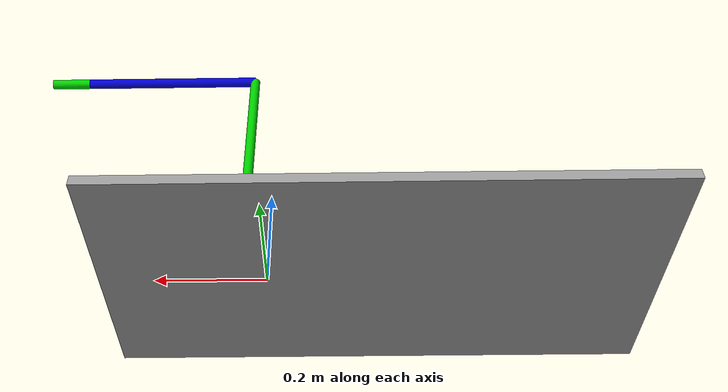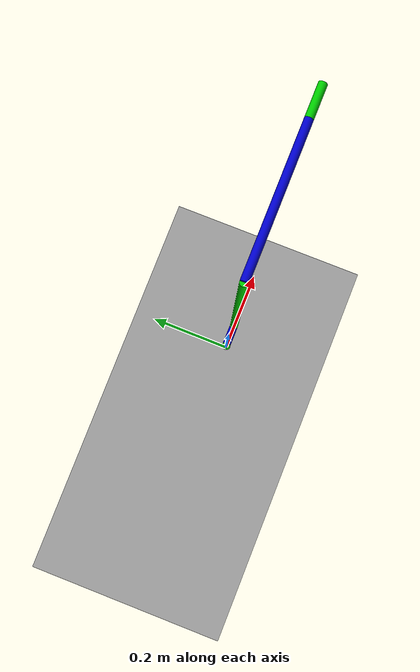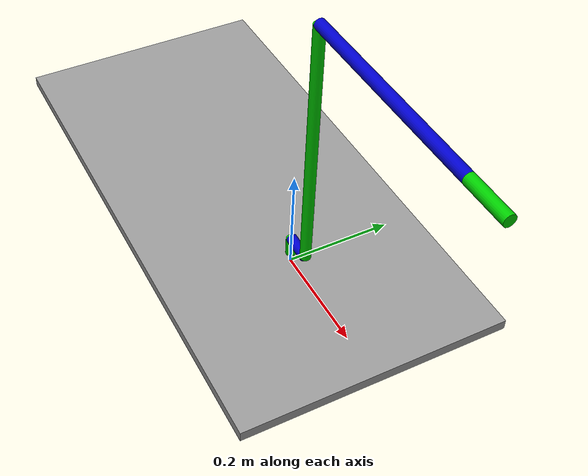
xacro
<?xml version="1.0"?>
<robot xmlns:xacro="http://www.ros.org/wiki/xacro" name="simon">

    <!-- This is an URDF representation of Simon's robotic arm -->

    <xacro:include filename="inertial_macros.xacro"/>
    <xacro:property name="pi" value="3.1415926535897931" />

    <material name="blue">
        <color rgba="0 0 0.8 1"/>
    </material>

    <material name="green">
        <color rgba="0 0.8 0 1"/>
    </material>

    <material name="grey">
        <color rgba="0.6 0.6 0.6 1"/>
    </material>

    <!-- World link -->
    <link name="world">
    </link>

    <!-- base_joint -->
    <joint name="base_joint" type="fixed">
        <origin xyz="0 0 0" rpy="0 0 0" />
        <parent link="world" />
        <child link="base_link" />
    </joint>

    <!-- base_link is a large rectangular plate -->
    <link name="base_link">
        <visual>
            <origin xyz="-0.2 0 0.01" rpy="0 0 0"/>
            <geometry>
                <box size="1 0.5 0.02"/>
            </geometry>
            <material name="grey" />
        </visual>
        <collision>
            <origin xyz="-0.2 0 0.01" rpy="0 0 0"/>
            <geometry>
                <box size="1 0.5 0.02"/>
            </geometry>
        </collision>
    </link>

    <!-- Fixed joint between base and link_1 -->
    <joint name="base_link_1" type="fixed">
        <origin xyz="0 0 0.02" rpy="0 0 0" />
        <parent link="base_link" />
        <child link="link_1" />
    </joint>

    <!-- link_1 -->
    <xacro:property name="link_length" value="0.036" />
    <xacro:property name="link_radius" value="0.01" />

    <link name="link_1">
        <visual>
            <origin xyz="0 0 ${link_length/2}" rpy="0 0 0" />
            <geometry>
                <cylinder length="${link_length}" radius="${link_radius}"/>
            </geometry>
            <material name="green" />
        </visual>
        <collision>
            <origin xyz="0 0 ${link_length/2}" rpy="0 0 0" />
            <geometry>
                <cylinder length="${link_length}" radius="${link_radius}"/>
            </geometry>
        </collision>
        <xacro:inertial_cylinder mass="0.3" length="${link_length}" radius="${link_radius}">
            <!-- Specifies the center of gravity and the inertial reference frame
            (relative to the link's reference frame) -->
            <origin xyz="0 0 ${link_length/2}" rpy="0 0 0" />
        </xacro:inertial_cylinder>
    </link>

    <!-- theta_1 allows link_1 to rotate with respect to base_link -->
    <joint name="theta_1" type="revolute">
        <origin xyz="0 0 ${link_length}" rpy="0 0 0" />
        <parent link="link_1" />
        <child link="link_2" />
        <axis xyz="0 0 1" />
        <limit lower="-${pi/2}" upper="${pi/2}" velocity="100" effort="1000.0" />
    </joint>

    <!-- link_2 -->
    <xacro:property name="link_length" value="0.05" />

    <link name="link_2">
        <visual>
            <origin xyz="${link_length/2} 0 0" rpy="0 ${pi/2} 0" />
            <geometry>
                <cylinder length="${link_length}" radius="${link_radius}"/>
            </geometry>
            <material name="blue" />
        </visual>
        <collision>
            <origin xyz="${link_length/2} 0 0" rpy="0 ${pi/2} 0" />
            <geometry>
                <cylinder length="${link_length}" radius="${link_radius}"/>
            </geometry>
        </collision>
        <xacro:inertial_cylinder mass="0.4" length="${link_length}" radius="${link_radius}">
            <origin xyz="${link_length/2} 0 0" rpy="0 ${pi/2} 0" />
        </xacro:inertial_cylinder>
    </link>

    <!-- theta_2 allows link_3 to rotate with respect to link_2 -->
    <joint name="theta_2" type="revolute">
        <origin xyz="${link_length} 0 0" rpy="0 0 0" />
        <parent link="link_2" />
        <child link="link_3" />
        <axis xyz="0 1 0" />
        <limit lower="-1" upper="${pi/2}" velocity="100" effort="100" />
    </joint>

    <!-- link_3 -->
    <xacro:property name="link_length" value="0.485" />

    <link name="link_3">
        <visual>
            <origin xyz="0 0 ${link_length/2}" rpy="0 0 0" />
            <geometry>
                <cylinder length="${link_length}" radius="${link_radius}"/>
            </geometry>
            <material name="green" />
        </visual>
        <collision>
            <origin xyz="0 0 ${link_length/2}" rpy="0 0 0" />
            <geometry>
                <cylinder length="${link_length}" radius="${link_radius}"/>
            </geometry>
        </collision>
        <xacro:inertial_cylinder mass="1" length="${link_length}" radius="${link_radius}">
            <origin xyz="0 0 ${link_length/2}" rpy="0 0 0" />
        </xacro:inertial_cylinder>
    </link>

    <!-- theta_3 allows link_4 to rotate with respect to link_3 -->
    <joint name="theta_3" type="revolute">
        <origin xyz="0 0 ${link_length}" rpy="0 0 0" />
        <parent link="link_3" />
        <child link="link_4" />
        <axis xyz="0 1 0" />
        <limit lower="-${pi/2}" upper="1" velocity="100" effort="1000.0" />
    </joint>

    <!-- link_4 -->
    <xacro:property name="link_length" value="0.36" />

    <link name="link_4">
        <visual>
            <origin xyz="${link_length/2} 0 0" rpy="0 ${pi/2} 0" />
            <geometry>
                <cylinder length="${link_length}" radius="${link_radius}"/>
            </geometry>
            <material name="blue" />
        </visual>
        <collision>
            <origin xyz="${link_length/2} 0 0" rpy="0 ${pi/2} 0" />
            <geometry>
                <cylinder length="${link_length}" radius="${link_radius}"/>
            </geometry>
        </collision>
        <xacro:inertial_cylinder mass="0.75" length="${link_length}" radius="${link_radius}">
            <origin xyz="${link_length/2} 0 0" rpy="0 ${pi/2} 0" />
        </xacro:inertial_cylinder>
    </link>

    <!-- theta_4 allows link_5 to rotate with respect to link_4 -->
    <joint name="theta_4" type="continuous">
        <origin xyz="${link_length} 0 0" rpy="0 0 0" />
        <parent link="link_4" />
        <child link="link_5" />
        <axis xyz="1 0 0" />
    </joint>

    <!-- link_5 -->
    <xacro:property name="link_length" value="0.08" />

    <link name="link_5">
        <visual>
            <origin xyz="${link_length/2} 0 0" rpy="0 ${pi/2} 0" />
            <geometry>
                <cylinder length="${link_length}" radius="${link_radius}"/>
            </geometry>
            <material name="green" />
        </visual>
        <collision>
            <origin xyz="${link_length/2} 0 0" rpy="0 ${pi/2} 0" />
            <geometry>
                <cylinder length="${link_length}" radius="${link_radius}"/>
            </geometry>
        </collision>
        <xacro:inertial_cylinder mass="0.4" length="${link_length}" radius="${link_radius}">
            <origin xyz="${link_length/2} 0 0" rpy="0 ${pi/2} 0" />
        </xacro:inertial_cylinder>
    </link>

    <!-- joint at the tip of the end effector -->
    <joint name="eef_fixed" type="fixed">
        <origin xyz="${link_length} 0 0" rpy="0 0 0" />
        <parent link="link_5" />
        <child link="eef_link"/>

    </joint>

    <!-- link to make eef_fixed work -->
    <link name="eef_link">
    </link>

</robot>

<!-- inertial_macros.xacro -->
<robot xmlns:xacro="http://www.ros.org/wiki/xacro" >

    <!-- Inertial calculations from https://en.wikipedia.org/wiki/List_of_moments_of_inertia -->

    <!-- Solid sphere of radius r and mass m -->
    <xacro:macro name="inertial_sphere" params="mass radius *origin">
        <inertial>
            <xacro:insert_block name="origin"/>
            <mass value="${mass}" />  <!-- Don't really understand this line -->
            <inertia ixx="${(2/5) * mass * (radius*radius)}" ixy="0.0" ixz="0.0"
                    iyy="${(2/5) * mass * (radius*radius)}" iyz="0.0"
                    izz="${(2/5) * mass * (radius*radius)}" />
        </inertial>
    </xacro:macro>

    <!-- Solid cuboid of width w, height h, depth d, and mass m -->
    <xacro:macro name="inertial_box" params="mass x y z *origin">
        <inertial>
            <xacro:insert_block name="origin"/>
            <mass value="${mass}" />
            <inertia ixx="${(1/12) * mass * (z*z + y*y)}" ixy="0.0" ixz="0.0"
                    iyy="${(1/12) * mass * (x*x + z*z)}" iyz="0.0"
                    izz="${(1/12) * mass * (x*x + y*y)}" />
        </inertial>
    </xacro:macro>

    <!-- Solid cylinder of radius r, height h and mass m -->
    <xacro:macro name="inertial_cylinder" params="mass length radius *origin">
        <inertial>
            <xacro:insert_block name="origin"/>
            <mass value="${mass}" />
            <inertia ixx="${(1/12) * mass * (3*radius*radius + length*length)}" ixy="0.0" ixz="0.0"
                    iyy="${(1/12) * mass * (3*radius*radius + length*length)}" iyz="0.0"
                    izz="${(1/2) * mass * (radius*radius)}" />
        </inertial>
    </xacro:macro>

</robot>
